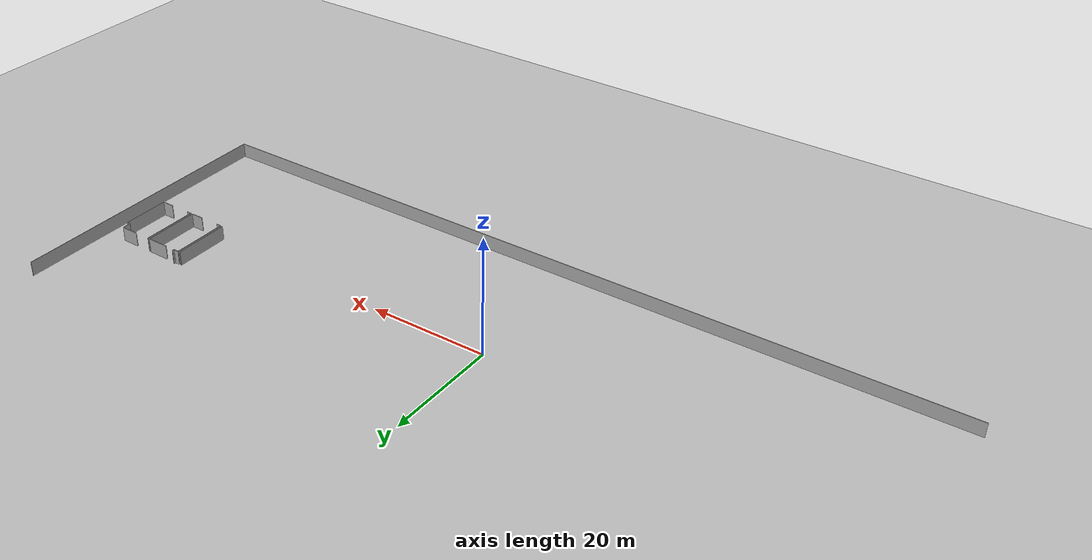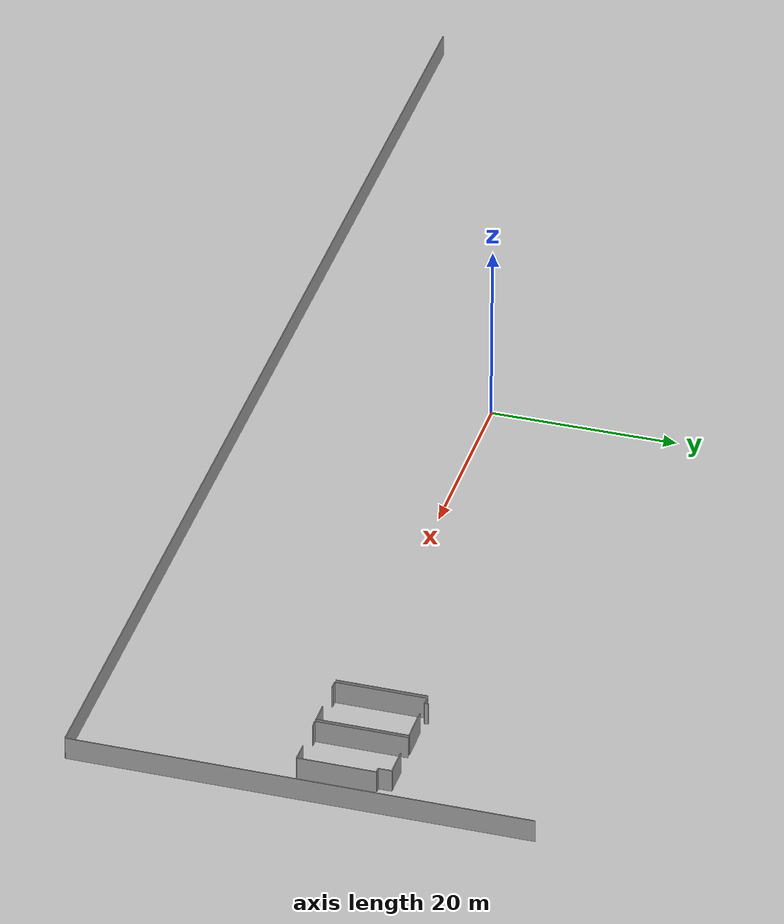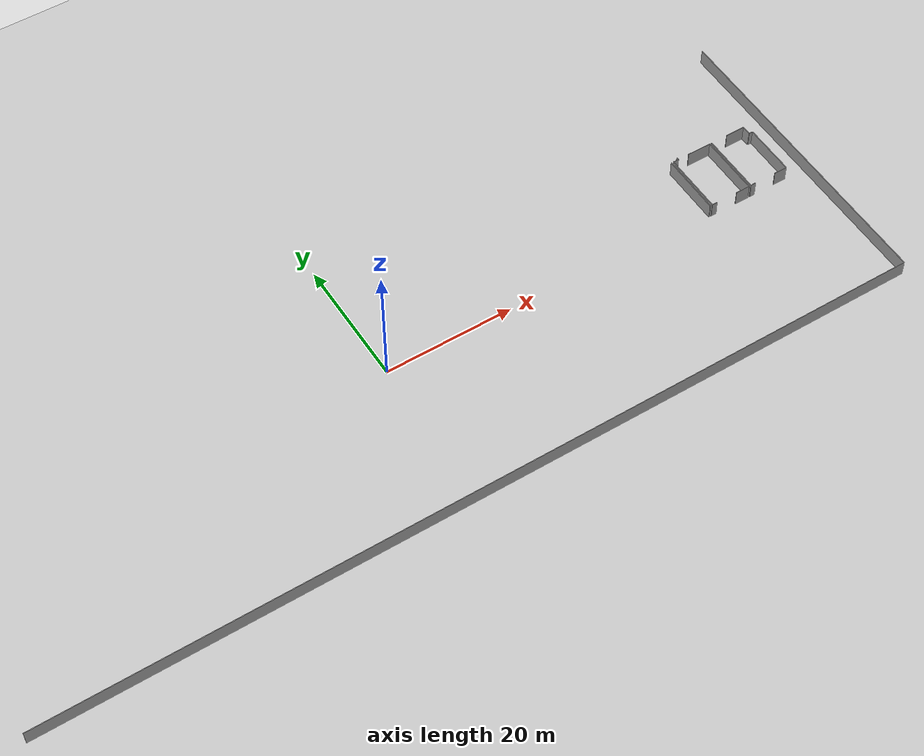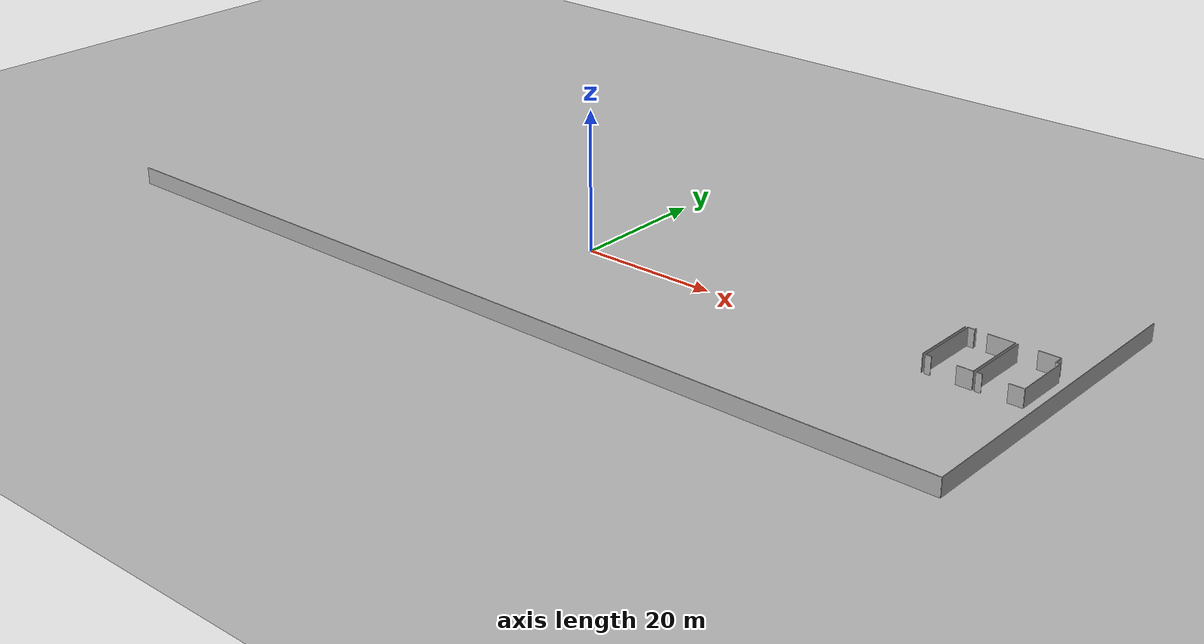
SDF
<sdf version="1.6">
 <world name="default">
  <model name="ground_plane">
   <static>1</static>
   <link name="link">
    <collision name="collision">
     <geometry><plane><normal>0 0 1</normal><size>100 100</size></plane></geometry>
     <surface><friction><ode><mu>100</mu><mu2>50</mu2></ode></friction></surface>
    </collision>
    <visual name="visual">
     <cast_shadows>0</cast_shadows>
     <geometry><plane><normal>0 0 1</normal><size>100 100</size></plane></geometry>
     <material>
      <script><uri>file://media/materials/scripts/gazebo.material</uri><name>Gazebo/Grey</name></script>
     </material>
    </visual>
   </link>
  </model>
  <model name="0510032197_A_40_1_105">
   <static>1</static>
   <link name="Wall_202">
    <collision name="Wall_202_Collision">
     <geometry><box><size>9.64348809721 0.1 2.5</size></box></geometry>
     <pose>4.8217440486 0 1.25 0 0 0</pose>
    </collision>
    <visual name="Wall_202_Visual">
     <pose>4.8217440486 0 1.25 0 0 0</pose>
     <geometry><box><size>9.64348809721 0.1 2.5</size></box></geometry>
     <material>
      <script><uri>file://media/materials/scripts/gazebo.material</uri><name>Gazebo/Grey</name></script>
      <ambient>1 1 1 1</ambient>
     </material>
    </visual>
    <pose>125.666315027 -25.3980096341 0 0 0 1.57079632679</pose>
   </link>
   <link name="Wall_206">
    <collision name="Wall_206_Collision">
     <geometry><box><size>3.03003342696 0.1 2.5</size></box></geometry>
     <pose>1.51501671348 0 1.25 0 0 0</pose>
    </collision>
    <visual name="Wall_206_Visual">
     <pose>1.51501671348 0 1.25 0 0 0</pose>
     <geometry><box><size>3.03003342696 0.1 2.5</size></box></geometry>
     <material>
      <script><uri>file://media/materials/scripts/gazebo.material</uri><name>Gazebo/Grey</name></script>
      <ambient>1 1 1 1</ambient>
     </material>
    </visual>
    <pose>128.356994878 -15.7620203612 0 0 0 0.0</pose>
   </link>
   <link name="Wall_207">
    <collision name="Wall_207_Collision">
     <geometry><box><size>1.40977897533 0.1 2.5</size></box></geometry>
     <pose>0.704889487665 0 1.25 0 0 0</pose>
    </collision>
    <visual name="Wall_207_Visual">
     <pose>0.704889487665 0 1.25 0 0 0</pose>
     <geometry><box><size>1.40977897533 0.1 2.5</size></box></geometry>
     <material>
      <script><uri>file://media/materials/scripts/gazebo.material</uri><name>Gazebo/Grey</name></script>
      <ambient>1 1 1 1</ambient>
     </material>
    </visual>
    <pose>131.387028305 -15.7620203612 0 0 0 -1.57079632679</pose>
   </link>
   <link name="Wall_208">
    <collision name="Wall_208_Collision">
     <geometry><box><size>0.6024479213 0.1 2.5</size></box></geometry>
     <pose>0.30122396065 0 1.25 0 0 0</pose>
    </collision>
    <visual name="Wall_208_Visual">
     <pose>0.30122396065 0 1.25 0 0 0</pose>
     <geometry><box><size>0.6024479213 0.1 2.5</size></box></geometry>
     <material>
      <script><uri>file://media/materials/scripts/gazebo.material</uri><name>Gazebo/Grey</name></script>
      <ambient>1 1 1 1</ambient>
     </material>
    </visual>
    <pose>131.387028305 -17.1717993365 0 0 0 0.0</pose>
   </link>
   <link name="Wall_209">
    <collision name="Wall_209_Collision">
     <geometry><box><size>8.21006876041 0.1 2.5</size></box></geometry>
     <pose>4.1050343802 0 1.25 0 0 0</pose>
    </collision>
    <visual name="Wall_209_Visual">
     <pose>4.1050343802 0 1.25 0 0 0</pose>
     <geometry><box><size>8.21006876041 0.1 2.5</size></box></geometry>
     <material>
      <script><uri>file://media/materials/scripts/gazebo.material</uri><name>Gazebo/Grey</name></script>
      <ambient>1 1 1 1</ambient>
     </material>
    </visual>
    <pose>131.989476226 -17.1717993365 0 0 0 -1.57079632679</pose>
   </link>
   <link name="Wall_210">
    <collision name="Wall_210_Collision">
     <geometry><box><size>2.07298008363 0.1 2.5</size></box></geometry>
     <pose>1.03649004182 0 1.25 0 0 0</pose>
    </collision>
    <visual name="Wall_210_Visual">
     <pose>1.03649004182 0 1.25 0 0 0</pose>
     <geometry><box><size>2.07298008363 0.1 2.5</size></box></geometry>
     <material>
      <script><uri>file://media/materials/scripts/gazebo.material</uri><name>Gazebo/Grey</name></script>
      <ambient>1 1 1 1</ambient>
     </material>
    </visual>
    <pose>131.989476226 -25.381868097 0 0 0 3.14159265359</pose>
   </link>
   <link name="Wall_211">
    <collision name="Wall_211_Collision">
     <geometry><box><size>0.821216367012 0.1 2.5</size></box></geometry>
     <pose>0.410608183506 0 1.25 0 0 0</pose>
    </collision>
    <visual name="Wall_211_Visual">
     <pose>0.410608183506 0 1.25 0 0 0</pose>
     <geometry><box><size>0.821216367012 0.1 2.5</size></box></geometry>
     <material>
      <script><uri>file://media/materials/scripts/gazebo.material</uri><name>Gazebo/Grey</name></script>
      <ambient>1 1 1 1</ambient>
     </material>
    </visual>
    <pose>126.487372742 -25.381868097 0 0 0 -3.12193574303</pose>
   </link>
   <link name="Wall_212">
    <collision name="Wall_212_Collision">
     <geometry><box><size>9.59315700505 0.1 2.5</size></box></geometry>
     <pose>4.79657850252 0 1.25 0 0 0</pose>
    </collision>
    <visual name="Wall_212_Visual">
     <pose>4.79657850252 0 1.25 0 0 0</pose>
     <geometry><box><size>9.59315700505 0.1 2.5</size></box></geometry>
     <material>
      <script><uri>file://media/materials/scripts/gazebo.material</uri><name>Gazebo/Grey</name></script>
      <ambient>1 1 1 1</ambient>
     </material>
    </visual>
    <pose>118.851281791 -25.368776929 0 0 0 1.57079632679</pose>
   </link>
   <link name="Wall_213">
    <collision name="Wall_213_Collision">
     <geometry><box><size>0.897316946072 0.1 2.5</size></box></geometry>
     <pose>0.448658473036 0 1.25 0 0 0</pose>
    </collision>
    <visual name="Wall_213_Visual">
     <pose>0.448658473036 0 1.25 0 0 0</pose>
     <geometry><box><size>0.897316946072 0.1 2.5</size></box></geometry>
     <material>
      <script><uri>file://media/materials/scripts/gazebo.material</uri><name>Gazebo/Grey</name></script>
      <ambient>1 1 1 1</ambient>
     </material>
    </visual>
    <pose>118.851281791 -15.775619924 0 0 0 0.0</pose>
   </link>
   <link name="Wall_214">
    <collision name="Wall_214_Collision">
     <geometry><box><size>0.401123552663 0.1 2.5</size></box></geometry>
     <pose>0.200561776332 0 1.25 0 0 0</pose>
    </collision>
    <visual name="Wall_214_Visual">
     <pose>0.200561776332 0 1.25 0 0 0</pose>
     <geometry><box><size>0.401123552663 0.1 2.5</size></box></geometry>
     <material>
      <script><uri>file://media/materials/scripts/gazebo.material</uri><name>Gazebo/Grey</name></script>
      <ambient>1 1 1 1</ambient>
     </material>
    </visual>
    <pose>119.748598737 -15.775619924 0 0 0 1.57079632679</pose>
   </link>
   <link name="Wall_216">
    <collision name="Wall_216_Collision">
     <geometry><box><size>3.77991586065 0.1 2.5</size></box></geometry>
     <pose>1.88995793032 0 1.25 0 0 0</pose>
    </collision>
    <visual name="Wall_216_Visual">
     <pose>1.88995793032 0 1.25 0 0 0</pose>
     <geometry><box><size>3.77991586065 0.1 2.5</size></box></geometry>
     <material>
      <script><uri>file://media/materials/scripts/gazebo.material</uri><name>Gazebo/Grey</name></script>
      <ambient>1 1 1 1</ambient>
     </material>
    </visual>
    <pose>121.534335719 -15.7646894343 0 0 0 0.0</pose>
   </link>
   <link name="Wall_217">
    <collision name="Wall_217_Collision">
     <geometry><box><size>9.62277100624 0.1 2.5</size></box></geometry>
     <pose>4.81138550312 0 1.25 0 0 0</pose>
    </collision>
    <visual name="Wall_217_Visual">
     <pose>4.81138550312 0 1.25 0 0 0</pose>
     <geometry><box><size>9.62277100624 0.1 2.5</size></box></geometry>
     <material>
      <script><uri>file://media/materials/scripts/gazebo.material</uri><name>Gazebo/Grey</name></script>
      <ambient>1 1 1 1</ambient>
     </material>
    </visual>
    <pose>125.314251579 -15.7646894343 0 0 0 -1.57079632679</pose>
   </link>
   <link name="Wall_218">
    <collision name="Wall_218_Collision">
     <geometry><box><size>2.21405966014 0.1 2.5</size></box></geometry>
     <pose>1.10702983007 0 1.25 0 0 0</pose>
    </collision>
    <visual name="Wall_218_Visual">
     <pose>1.10702983007 0 1.25 0 0 0</pose>
     <geometry><box><size>2.21405966014 0.1 2.5</size></box></geometry>
     <material>
      <script><uri>file://media/materials/scripts/gazebo.material</uri><name>Gazebo/Grey</name></script>
      <ambient>1 1 1 1</ambient>
     </material>
    </visual>
    <pose>125.314251579 -25.3874604405 0 0 0 3.14159265359</pose>
   </link>
   <link name="Wall_219">
    <collision name="Wall_219_Collision">
     <geometry><box><size>0.836518234401 0.1 2.5</size></box></geometry>
     <pose>0.418259117201 0 1.25 0 0 0</pose>
    </collision>
    <visual name="Wall_219_Visual">
     <pose>0.418259117201 0 1.25 0 0 0</pose>
     <geometry><box><size>0.836518234401 0.1 2.5</size></box></geometry>
     <material>
      <script><uri>file://media/materials/scripts/gazebo.material</uri><name>Gazebo/Grey</name></script>
      <ambient>1 1 1 1</ambient>
     </material>
    </visual>
    <pose>119.687591352 -25.3874604405 0 0 0 3.11925594361</pose>
   </link>
   <link name="Wall_225">
    <collision name="Wall_225_Collision">
     <geometry><box><size>9.63026983058 0.1 2.5</size></box></geometry>
     <pose>4.81513491529 0 1.25 0 0 0</pose>
    </collision>
    <visual name="Wall_225_Visual">
     <pose>4.81513491529 0 1.25 0 0 0</pose>
     <geometry><box><size>9.63026983058 0.1 2.5</size></box></geometry>
     <material>
      <script><uri>file://media/materials/scripts/gazebo.material</uri><name>Gazebo/Grey</name></script>
      <ambient>1 1 1 1</ambient>
     </material>
    </visual>
    <pose>118.483966497 -15.7635455458 0 0 0 -1.57079632679</pose>
   </link>
   <link name="Wall_549">
    <collision name="Wall_549_Collision">
     <geometry><box><size>48.3613162343 0.1 2.5</size></box></geometry>
     <pose>24.1806581172 0 1.25 0 0 0</pose>
    </collision>
    <visual name="Wall_549_Visual">
     <pose>24.1806581172 0 1.25 0 0 0</pose>
     <geometry><box><size>48.3613162343 0.1 2.5</size></box></geometry>
     <material>
      <script><uri>file://media/materials/scripts/gazebo.material</uri><name>Gazebo/Grey</name></script>
      <ambient>1 1 1 1</ambient>
     </material>
    </visual>
    <pose>135.287687947 -48.3613162343 0 0 0 1.57079632679</pose>
   </link>
   <link name="Wall_550">
    <collision name="Wall_550_Collision">
     <geometry><box><size>135.287687947 0.1 2.5</size></box></geometry>
     <pose>67.6438439736 0 1.25 0 0 0</pose>
    </collision>
    <visual name="Wall_550_Visual">
     <pose>67.6438439736 0 1.25 0 0 0</pose>
     <geometry><box><size>135.287687947 0.1 2.5</size></box></geometry>
     <material>
      <script><uri>file://media/materials/scripts/gazebo.material</uri><name>Gazebo/Grey</name></script>
      <ambient>1 1 1 1</ambient>
     </material>
    </visual>
    <pose>135.287687947 -48.3613162343 0 0 0 3.14159265359</pose>
   </link>
   <pose>-65.5 24.1613162343 0 0 0 0</pose>
  </model>
 </world>
</sdf>
